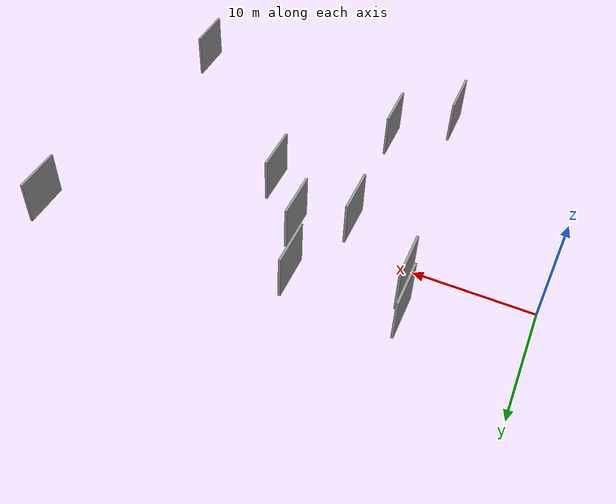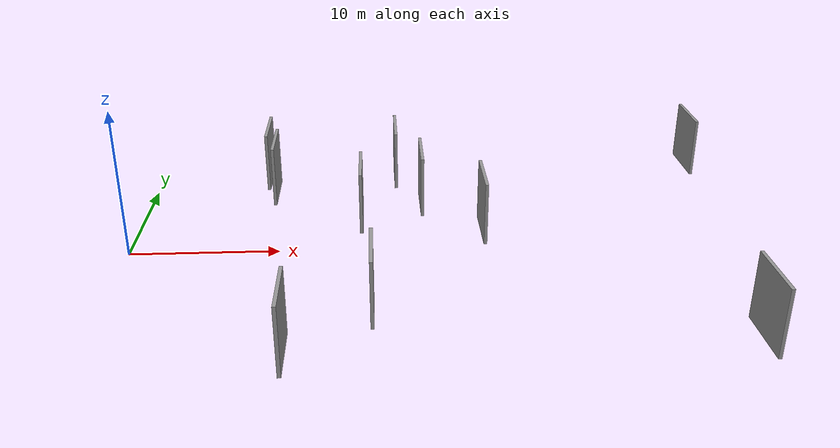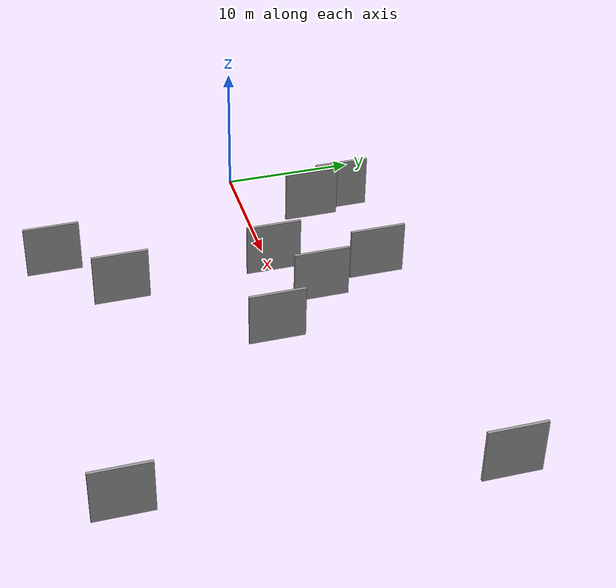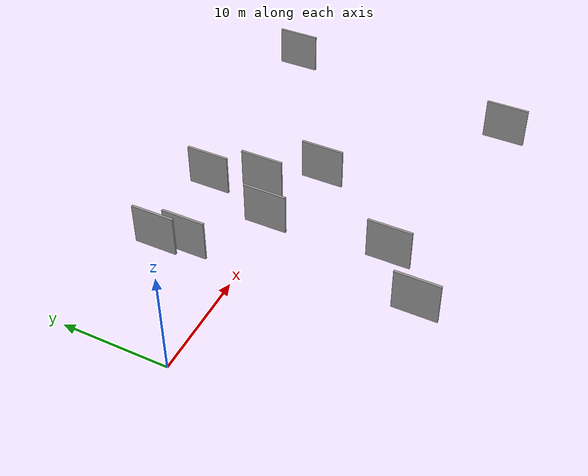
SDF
<sdf version="1.6">
 <world name="default">
  <scene>
   <sky><clouds><speed>12</speed></clouds></sky>
   <ambient>0.4 0.4 0.4 1</ambient>
   <background>0.7 0.7 0.7 1</background>
   <shadows>1</shadows>
  </scene>
  <gravity>0 0 -9.8066</gravity>
  <magnetic_field>6e-06 2.3e-05 -4.2e-05</magnetic_field>
  <physics default="0" name="default_physics" type="ode">
   <ode>
    <solver>
     <type>quick</type>
     <iters>10</iters>
     <sor>1.0</sor>
     <use_dynamic_moi_rescaling>0</use_dynamic_moi_rescaling>
    </solver>
    <constraints>
     <cfm>0</cfm>
     <erp>0.2</erp>
     <contact_max_correcting_vel>100</contact_max_correcting_vel>
     <contact_surface_layer>0.001</contact_surface_layer>
    </constraints>
   </ode>
   <max_step_size>0.004</max_step_size>
   <real_time_factor>1</real_time_factor>
   <real_time_update_rate>250</real_time_update_rate>
  </physics>
  <light name="sun" type="directional">
   <pose>0 0 10 0 0 0</pose>
   <diffuse>0.8 0.8 0.8 1</diffuse>
   <specular>0.2 0.2 0.2 1</specular>
   <attenuation>
    <range>1000</range>
    <constant>0.9</constant>
    <linear>0.01</linear>
    <quadratic>0.001</quadratic>
   </attenuation>
   <direction>-0.5 0.1 -0.9</direction>
  </light>
  <model name="grey_wall_1">
   <static>1</static>
   <pose>9.6916 3.9698 2.5 0.000000 0.000000 1.570796</pose>
   <link name="link">
    <pose>0 0 2.00 0 0 0</pose>
    <collision name="collision"><geometry><box><size>4.00 0.2 4.00</size></box></geometry></collision>
    <visual name="visual">
     <cast_shadows>0</cast_shadows>
     <geometry><box><size>4.00 0.2 4.00</size></box></geometry>
     <material>
      <script>
       <uri>model://grey_wall/materials/scripts</uri>
       <uri>model://grey_wall/materials/textures</uri>
       <name>vrc/grey_wall</name>
      </script>
     </material>
    </visual>
   </link>
  </model>
  <model name="grey_wall_2">
   <static>1</static>
   <pose>15.5351 -0.6087 2.5 0.000000 0.000000 1.570796</pose>
   <link name="link">
    <pose>0 0 2.00 0 0 0</pose>
    <collision name="collision"><geometry><box><size>4.00 0.2 4.00</size></box></geometry></collision>
    <visual name="visual">
     <cast_shadows>0</cast_shadows>
     <geometry><box><size>4.00 0.2 4.00</size></box></geometry>
     <material>
      <script>
       <uri>model://grey_wall/materials/scripts</uri>
       <uri>model://grey_wall/materials/textures</uri>
       <name>vrc/grey_wall</name>
      </script>
     </material>
    </visual>
   </link>
  </model>
  <model name="grey_wall_3">
   <static>1</static>
   <pose>11.6327 -16.0387 2.5 0.000000 0.000000 1.570796</pose>
   <link name="link">
    <pose>0 0 2.00 0 0 0</pose>
    <collision name="collision"><geometry><box><size>4.00 0.2 4.00</size></box></geometry></collision>
    <visual name="visual">
     <cast_shadows>0</cast_shadows>
     <geometry><box><size>4.00 0.2 4.00</size></box></geometry>
     <material>
      <script>
       <uri>model://grey_wall/materials/scripts</uri>
       <uri>model://grey_wall/materials/textures</uri>
       <name>vrc/grey_wall</name>
      </script>
     </material>
    </visual>
   </link>
  </model>
  <model name="grey_wall_4">
   <static>1</static>
   <pose>16.1752 -11.8919 2.5 0.000000 0.000000 1.570796</pose>
   <link name="link">
    <pose>0 0 2.00 0 0 0</pose>
    <collision name="collision"><geometry><box><size>4.00 0.2 4.00</size></box></geometry></collision>
    <visual name="visual">
     <cast_shadows>0</cast_shadows>
     <geometry><box><size>4.00 0.2 4.00</size></box></geometry>
     <material>
      <script>
       <uri>model://grey_wall/materials/scripts</uri>
       <uri>model://grey_wall/materials/textures</uri>
       <name>vrc/grey_wall</name>
      </script>
     </material>
    </visual>
   </link>
  </model>
  <model name="grey_wall_5">
   <static>1</static>
   <pose>39.4198 7.9241 2.5 0.000000 0.000000 1.570796</pose>
   <link name="link">
    <pose>0 0 2.00 0 0 0</pose>
    <collision name="collision"><geometry><box><size>4.00 0.2 4.00</size></box></geometry></collision>
    <visual name="visual">
     <cast_shadows>0</cast_shadows>
     <geometry><box><size>4.00 0.2 4.00</size></box></geometry>
     <material>
      <script>
       <uri>model://grey_wall/materials/scripts</uri>
       <uri>model://grey_wall/materials/textures</uri>
       <name>vrc/grey_wall</name>
      </script>
     </material>
    </visual>
   </link>
  </model>
  <model name="grey_wall_6">
   <static>1</static>
   <pose>17.9291 6.4244 2.5 0.000000 0.000000 1.570796</pose>
   <link name="link">
    <pose>0 0 2.00 0 0 0</pose>
    <collision name="collision"><geometry><box><size>4.00 0.2 4.00</size></box></geometry></collision>
    <visual name="visual">
     <cast_shadows>0</cast_shadows>
     <geometry><box><size>4.00 0.2 4.00</size></box></geometry>
     <material>
      <script>
       <uri>model://grey_wall/materials/scripts</uri>
       <uri>model://grey_wall/materials/textures</uri>
       <name>vrc/grey_wall</name>
      </script>
     </material>
    </visual>
   </link>
  </model>
  <model name="grey_wall_7">
   <static>1</static>
   <pose>19.5284 1.7859 2.5 0.000000 0.000000 1.570796</pose>
   <link name="link">
    <pose>0 0 2.00 0 0 0</pose>
    <collision name="collision"><geometry><box><size>4.00 0.2 4.00</size></box></geometry></collision>
    <visual name="visual">
     <cast_shadows>0</cast_shadows>
     <geometry><box><size>4.00 0.2 4.00</size></box></geometry>
     <material>
      <script>
       <uri>model://grey_wall/materials/scripts</uri>
       <uri>model://grey_wall/materials/textures</uri>
       <name>vrc/grey_wall</name>
      </script>
     </material>
    </visual>
   </link>
  </model>
  <model name="grey_wall_8">
   <static>1</static>
   <pose>9.0314 6.5259 2.5 0.000000 0.000000 1.570796</pose>
   <link name="link">
    <pose>0 0 2.00 0 0 0</pose>
    <collision name="collision"><geometry><box><size>4.00 0.2 4.00</size></box></geometry></collision>
    <visual name="visual">
     <cast_shadows>0</cast_shadows>
     <geometry><box><size>4.00 0.2 4.00</size></box></geometry>
     <material>
      <script>
       <uri>model://grey_wall/materials/scripts</uri>
       <uri>model://grey_wall/materials/textures</uri>
       <name>vrc/grey_wall</name>
      </script>
     </material>
    </visual>
   </link>
  </model>
  <model name="grey_wall_9">
   <static>1</static>
   <pose>23.2138 -2.4607 2.5 0.000000 0.000000 1.570796</pose>
   <link name="link">
    <pose>0 0 2.00 0 0 0</pose>
    <collision name="collision"><geometry><box><size>4.00 0.2 4.00</size></box></geometry></collision>
    <visual name="visual">
     <cast_shadows>0</cast_shadows>
     <geometry><box><size>4.00 0.2 4.00</size></box></geometry>
     <material>
      <script>
       <uri>model://grey_wall/materials/scripts</uri>
       <uri>model://grey_wall/materials/textures</uri>
       <name>vrc/grey_wall</name>
      </script>
     </material>
    </visual>
   </link>
  </model>
  <model name="grey_wall_10">
   <static>1</static>
   <pose>36.5116 -15.6295 2.5 0.000000 0.000000 1.570796</pose>
   <link name="link">
    <pose>0 0 2.00 0 0 0</pose>
    <collision name="collision"><geometry><box><size>4.00 0.2 4.00</size></box></geometry></collision>
    <visual name="visual">
     <cast_shadows>0</cast_shadows>
     <geometry><box><size>4.00 0.2 4.00</size></box></geometry>
     <material>
      <script>
       <uri>model://grey_wall/materials/scripts</uri>
       <uri>model://grey_wall/materials/textures</uri>
       <name>vrc/grey_wall</name>
      </script>
     </material>
    </visual>
   </link>
  </model>
 </world>
</sdf>
